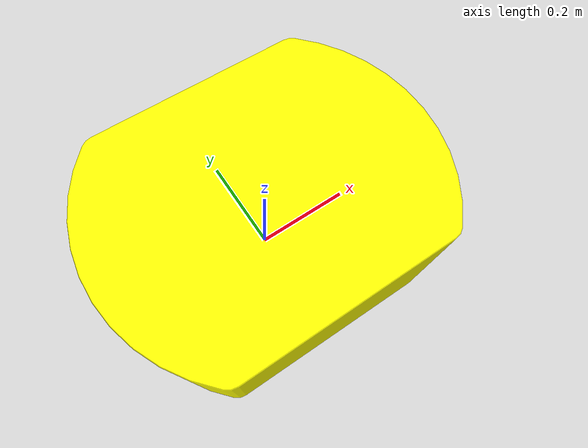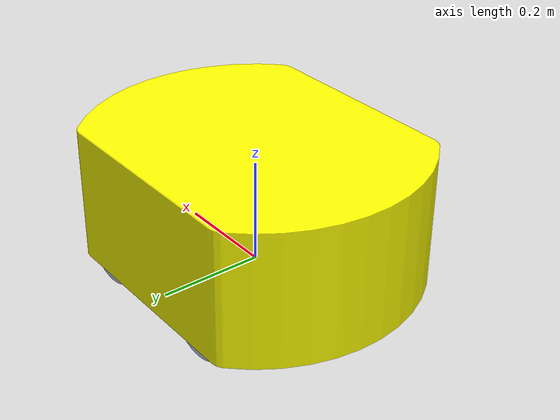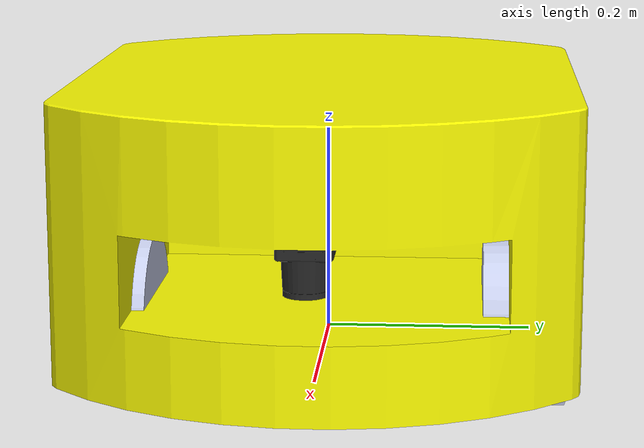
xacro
<?xml version="1.0"?>
<robot xmlns:xacro="http://www.ros.org/wiki/xacro"
       xmlns:sensor="http://playerstage.sourceforge.net/gazebo/xmlschema/#sensor"
       xmlns:controller="http://playerstage.sourceforge.net/gazebo/xmlschema/#controller"
       xmlns:interface="http://playerstage.sourceforge.net/gazebo/xmlschema/#interface"
  name="aiv_finalsh3">
   <xacro:macro name="default_inertial" params="mass">
               <inertial>
                       <mass value="${mass}" />
                       <inertia ixx="1.0" ixy="0.0" ixz="0.0"
                                iyy="1.0" iyz="0.0"
                                izz="1.0" />
               </inertial>
	</xacro:macro>

  <link name="base_footprint">
	<visual>
		<geometry>
			<box size="0.001 0.001 0.001"/>
		</geometry>
		<origin rpy="0 0 0" xyz="0 0 0"/>
	</visual>
	<xacro:default_inertial mass="0.0001"/>
  </link>
 <gazebo reference="base_footprint">
		<material>Gazebo/Green</material>
		<turnGravityOff>false</turnGravityOff>
	</gazebo>

   <joint name="base_footprint_joint" type="fixed">
		<origin xyz="0 0 0" rpy="0 0 0"/>
		<parent link="base_footprint" />
		<child link="base_link" />
	</joint>
  <link
    name="base_link">
    <inertial>
      <origin
        xyz="-0.0205547931889634 -0.000731033629879456 0.127228336259245"
        rpy="0 0 0" />
      <mass
        value="168.754504459945" />
      <inertia
        ixx="4.17621889059127"
        ixy="0.0186018201416381"
        ixz="-0.0630992884603515"
        iyy="5.69669711203428"
        iyz="-0.00224413359268311"
        izz="7.74636632731185" />
    </inertial>
    <visual>
      <origin
        xyz="0 0 0"
        rpy="0 0 0" />
      <geometry>
        <mesh
          filename="package://aiv_finalsh3/meshes/base_link.STL" />
      </geometry>
      <material
        name="">
        <color
          rgba="1 1 0 1" />
      </material>
    </visual>
    <collision>
      <origin
        xyz="0 0 0"
        rpy="0 0 0" />
      <geometry>
        <mesh
          filename="package://aiv_finalsh3/meshes/base_link.STL" />
      </geometry>
    </collision>
  </link>
<gazebo reference="base_link">
    <material>Gazebo/Orange</material>
  </gazebo>
  <link
    name="right_wheel1">
    <inertial>
      <origin
        xyz="-1.80938597438285E-13 -3.37160854790852E-14 0.0479999999998411"
        rpy="0 0 0" />
      <mass
        value="1.38940851892519" />
      <inertia
        ixx="0.00276634374084104"
        ixy="-3.38627612015008E-35"
        ixz="-6.86661375907486E-20"
        iyy="0.00276634374084104"
        iyz="-3.0057768047017E-35"
        izz="0.00419515021413011" />
    </inertial>
    <visual>
      <origin
        xyz="0 0 0"
        rpy="0 0 0" />
      <geometry>
        <mesh
          filename="package://aiv_finalsh3/meshes/right_wheel1.STL" />
      </geometry>
      <material
        name="">
        <color
          rgba="0.792156862745098 0.819607843137255 0.933333333333333 1" />
      </material>
    </visual>
    <collision>
      <origin
        xyz="0 0 0"
        rpy="0 0 0" />
      <geometry>
        <mesh
          filename="package://aiv_finalsh3/meshes/right_wheel1.STL" />
      </geometry>
    </collision>
  </link>
   <gazebo reference="right_wheel1">
         <mu1 value="1.0"/>
         <mu2 value="1.0"/>
         <kp  value="10000000.0" />
         <kd  value="1.0" />
         <fdir1 value="1 0 0"/>
	 <material>Gazebo/Black</material>
          <turnGravityOff>false</turnGravityOff> <turnGravityOff>false</turnGravityOff>
      </gazebo>
  <joint
    name="base_to_wheel1"
    type="continuous">
    <origin
      xyz="0.139897063904446 0.14156844913427 0.0450000000000102"
      rpy="1.5707963267949 0 3.14159265358979" />
    <parent
      link="base_link" />
    <child
      link="right_wheel1" />
    <axis
      xyz="0 0 1" />
    <limit effort="100" velocity="100"/>
      <joint_properties damping="0.0" friction="0.0"/>
  </joint>
   <transmission name="right_wheel1_joint_trans">
      <type>transmission_interface/SimpleTransmission</type>
      <joint name="base_to_wheel1" />
      <actuator name="right_wheel1_joint_motor">
        <hardwareInterface>EffortJointInterface</hardwareInterface>
        <mechanicalReduction>1</mechanicalReduction>
      </actuator>
    </transmission>
  <link
    name="left_wheel2">
    <inertial>
      <origin
        xyz="-9.28701560098943E-14 -3.64777652528403E-14 -0.0480000000000041"
        rpy="0 0 0" />
      <mass
        value="1.38940851892519" />
      <inertia
        ixx="0.00276634374084104"
        ixy="-1.00531223917652E-35"
        ixz="1.00047004869847E-17"
        iyy="0.00276634374084104"
        iyz="5.47129115782852E-36"
        izz="0.00419515021413011" />
    </inertial>
    <visual>
      <origin
        xyz="0 0 0"
        rpy="0 0 0" />
      <geometry>
        <mesh
          filename="package://aiv_finalsh3/meshes/left_wheel2.STL" />
      </geometry>
      <material
        name="">
        <color
          rgba="0.792156862745098 0.819607843137255 0.933333333333333 1" />
      </material>
    </visual>
    <collision>
      <origin
        xyz="0 0 0"
        rpy="0 0 0" />
      <geometry>
        <mesh
          filename="package://aiv_finalsh3/meshes/left_wheel2.STL" />
      </geometry>
    </collision>
  </link>
   <gazebo reference="left_wheel2">
         <mu1 value="1.0"/>
         <mu2 value="1.0"/>
         <kp  value="10000000.0" />
         <kd  value="1.0" />
         <fdir1 value="1 0 0"/>
	 <material>Gazebo/Black</material>
        <turnGravityOff>false</turnGravityOff> <turnGravityOff>false</turnGravityOff>
   </gazebo>
  <joint
    name="base_to_wheel2"
    type="continuous">
    <origin
      xyz="0.139897063904454 -0.141724083720374 0.0450000000000127"
      rpy="1.5707963267949 0 3.14159265358979" />
    <parent
      link="base_link" />
    <child
      link="left_wheel2" />
    <axis
      xyz="0 0 1" />
     <limit effort="100" velocity="100"/>
      <joint_properties damping="0.0" friction="0.0"/>
  </joint>
   <transmission name="left_wheel2_joint_trans">
      <type>transmission_interface/SimpleTransmission</type>
      <joint name="base_to_wheel2" />
      <actuator name="left_wheel2_joint_motor">
        <hardwareInterface>EffortJointInterface</hardwareInterface>
        <mechanicalReduction>1</mechanicalReduction>
      </actuator>
    </transmission>
  <link
    name="left_wheel3">
    <inertial>
      <origin
        xyz="-8.40438829641244E-14 9.73041092144911E-14 -0.0480000000000046"
        rpy="0 0 0" />
      <mass
        value="1.38940851892519" />
      <inertia
        ixx="0.00276634374084104"
        ixy="1.0075091872086E-35"
        ixz="1.00722937161756E-17"
        iyy="0.00276634374084104"
        iyz="4.11510363356561E-35"
        izz="0.00419515021413011" />
    </inertial>
    <visual>
      <origin
        xyz="0 0 0"
        rpy="0 0 0" />
      <geometry>
        <mesh
          filename="package://aiv_finalsh3/meshes/left_wheel3.STL" />
      </geometry>
      <material
        name="">
        <color
          rgba="0.792156862745098 0.819607843137255 0.933333333333333 1" />
      </material>
    </visual>
    <collision>
      <origin
        xyz="0 0 0"
        rpy="0 0 0" />
      <geometry>
        <mesh
          filename="package://aiv_finalsh3/meshes/left_wheel3.STL" />
      </geometry>
    </collision>
  </link>
  <gazebo reference="left_wheel3">
	 <mu1 value="1.0"/>
         <mu2 value="1.0"/>
         <kp  value="10000000.0" />
         <kd  value="1.0" />
         <fdir1 value="1 0 0"/>
	 <material>Gazebo/Black</material>
        <turnGravityOff>false</turnGravityOff> <turnGravityOff>false</turnGravityOff>
   </gazebo>
  <joint
    name="base_to_wheel3"
    type="continuous">
    <origin
      xyz="-0.139482853114889 -0.141724083720375 0.0449999999997022"
      rpy="1.5707963267949 0 3.14159265358979" />
    <parent
      link="base_link" />
    <child
      link="left_wheel3" />
    <axis
      xyz="0 0 1" />
   <limit effort="100" velocity="100"/>
      <joint_properties damping="0.0" friction="0.0"/>
  </joint>
  <transmission name="left_wheel3_joint_trans">
      <type>transmission_interface/SimpleTransmission</type>
      <joint name="base_to_wheel3" />
      <actuator name="left_wheel3_joint_motor">
        <hardwareInterface>EffortJointInterface</hardwareInterface>
        <mechanicalReduction>1</mechanicalReduction>
      </actuator>
    </transmission>
  <link
    name="right_wheel4">
    <inertial>
      <origin
        xyz="7.22755189030977E-14 -3.29250515740398E-14 0.0479999999999986"
        rpy="0 0 0" />
      <mass
        value="1.38940851892519" />
      <inertia
        ixx="0.00276634374084104"
        ixy="-1.09847401603854E-38"
        ixz="-6.86661375907486E-20"
        iyy="0.00276634374084104"
        iyz="-8.15262893040505E-36"
        izz="0.00419515021413011" />
    </inertial>
    <visual>
      <origin
        xyz="0 0 0"
        rpy="0 0 0" />
      <geometry>
        <mesh
          filename="package://aiv_finalsh3/meshes/right_wheel4.STL" />
      </geometry>
      <material
        name="">
        <color
          rgba="0.792156862745098 0.819607843137255 0.933333333333333 1" />
      </material>
    </visual>
    <collision>
      <origin
        xyz="0 0 0"
        rpy="0 0 0" />
      <geometry>
        <mesh
          filename="package://aiv_finalsh3/meshes/right_wheel4.STL" />
      </geometry>
    </collision>
  </link>
   <gazebo reference="right_wheel4">
	 <mu1 value="1.0"/>
         <mu2 value="1.0"/>
         <kp  value="10000000.0" />
         <kd  value="1.0" />
         <fdir1 value="1 0 0"/>
	 <material>Gazebo/Black</material>
        <turnGravityOff>false</turnGravityOff> <turnGravityOff>false</turnGravityOff>
      </gazebo>
  <joint
    name="base_to_wheel4"
    type="continuous">
    <origin
      xyz="-0.139482853115031 0.14156844913422 0.0449999999996804"
      rpy="1.5707963267949 0 3.14159265358979" />
    <parent
      link="base_link" />
    <child
      link="right_wheel4" />
    <axis
      xyz="0 0 1" />
       <limit effort="100" velocity="100"/>
      <joint_properties damping="0.0" friction="0.0"/>
  </joint>
   <transmission name="right_wheel4_joint_trans">
      <type>transmission_interface/SimpleTransmission</type>
      <joint name="base_to_wheel4" />
      <actuator name="right_wheel4_joint_motor">
        <hardwareInterface>EffortJointInterface</hardwareInterface>
        <mechanicalReduction>1</mechanicalReduction>
      </actuator>
    </transmission>
  <link
    name="hokuyo_link">
    <inertial>
      <origin
        xyz="-0.000780692813444839 -4.15767225388032E-05 0.00546903856585154"
        rpy="0 0 0" />
      <mass
        value="0.134683421856803" />
      <inertia
        ixx="7.23289314303304E-05"
        ixy="-3.07307453428314E-07"
        ixz="6.6088930249849E-07"
        iyy="7.60198201005007E-05"
        iyz="1.05297506302451E-07"
        izz="4.80658661333216E-05" />
    </inertial>
    <visual>
      <origin
        xyz="0 0 0"
        rpy="0 0 0" />
      <geometry>
        <mesh
          filename="package://aiv_finalsh3/meshes/hokuyo_link.STL" />
      </geometry>
      <material
        name="">
        <color
          rgba="0.156862745098039 0.156862745098039 0.156862745098039 1" />
      </material>
    </visual>
    <collision>
      <origin
        xyz="0 0 0"
        rpy="0 0 0" />
      <geometry>
        <mesh
          filename="package://aiv_finalsh3/meshes/hokuyo_link.STL" />
      </geometry>
    </collision>
  </link>
  <joint
    name="hokuyo_link_joint"
    type="fixed">
    <origin
      xyz="0.285 0 0.138"
      rpy="7.0442E-15 -1.6389E-30 1.0616E-14" />
    <parent
      link="base_link" />
    <child
      link="hokuyo_link" />
    <axis
      xyz="1 0 0" />
  </joint>
   <!-- ros_control plugin -->
  <gazebo>
    <plugin name="gazebo_ros_control" filename="libgazebo_ros_control.so">
      <robotNamespace>/robot</robotNamespace>

    </plugin>
  </gazebo>

<!-- hokuyo -->
  <gazebo reference="hokuyo_link">
    <sensor type="ray" name="head_hokuyo_sensor">
      <pose>0 0 0 0 0 0</pose>
      <visualize>false</visualize>
      <update_rate>40</update_rate>
      <ray>
        <scan>
          <horizontal>
            <samples>720</samples>
            <resolution>1</resolution>
            <min_angle>-1.570796</min_angle>
            <max_angle>1.570796</max_angle>
          </horizontal>
        </scan>
        <range>
          <min>0.10</min>
          <max>10.0</max>
          <resolution>0.001</resolution>
        </range>
        <noise>
          <type>gaussian</type>
          <mean>0.0</mean>
          <stddev>0.01</stddev>
        </noise>
      </ray>
      <plugin name="gazebo_ros_head_hokuyo_controller" filename="libgazebo_ros_laser.so">
        <topicName>/robot/laser/scan</topicName>
        <frameName>hokuyo_link</frameName>
      </plugin>
    </sensor>
  </gazebo>

 <!-- Drive controller -->
<gazebo>
  <plugin name="skid_steer_drive_controller" filename="libgazebo_ros_skid_steer_drive.so">
      <alwaysOn>true</alwaysOn>
    <updateRate>100.0</updateRate>
    <robotNamespace>/</robotNamespace>
    <leftFrontJoint>base_to_wheel1</leftFrontJoint>
    <rightFrontJoint>base_to_wheel2</rightFrontJoint>
    <leftRearJoint>base_to_wheel4</leftRearJoint>
    <rightRearJoint>base_to_wheel3</rightRearJoint>
    <wheelSeparation>1.132</wheelSeparation>
    <wheelDiameter>0.154</wheelDiameter>
      <torque>30</torque>
      <commandTopic>cmd_vel</commandTopic>
      <odometryTopic>odom</odometryTopic>
      <odometryFrame>odom</odometryFrame>
    <robotBaseFrame>base_footprint</robotBaseFrame>
    <broadcastTF>1</broadcastTF>
  </plugin>
</gazebo>
</robot>
